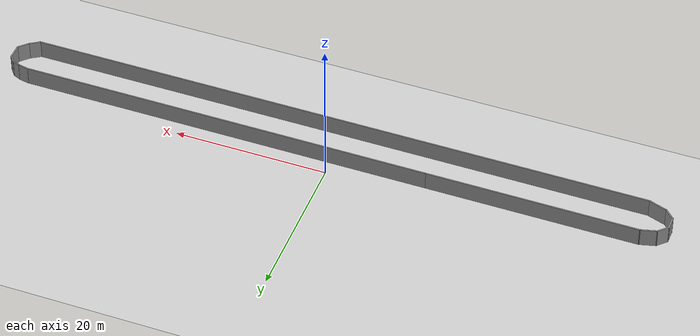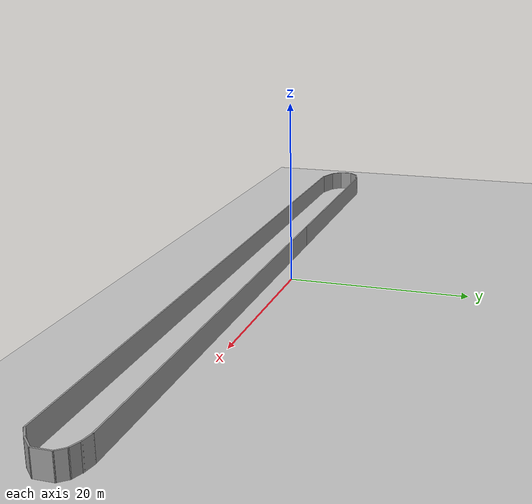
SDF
<sdf version="1.7">
 <world name="default">
  <light name="sun" type="directional">
   <pose>0 0 10 0 -0 0</pose>
   <diffuse>0.8 0.8 0.8 1</diffuse>
   <specular>0.2 0.2 0.2 1</specular>
   <attenuation>
    <range>1000</range>
    <constant>0.9</constant>
    <linear>0.01</linear>
    <quadratic>0.001</quadratic>
   </attenuation>
   <direction>-0.5 0.1 -0.9</direction>
   <spot><inner_angle>0</inner_angle><outer_angle>0</outer_angle><falloff>0</falloff></spot>
  </light>
  <model name="ground_plane">
   <static>1</static>
   <link name="link">
    <collision name="collision">
     <geometry><plane><normal>0 0 1</normal><size>100 100</size></plane></geometry>
     <surface><friction><ode><mu>100</mu><mu2>50</mu2></ode></friction></surface>
    </collision>
    <visual name="visual">
     <cast_shadows>0</cast_shadows>
     <geometry><plane><normal>0 0 1</normal><size>100 100</size></plane></geometry>
     <material>
      <script><uri>file://media/materials/scripts/gazebo.material</uri><name>Gazebo/Grey</name></script>
     </material>
    </visual>
   </link>
  </model>
  <gravity>0 0 -9.8</gravity>
  <magnetic_field>6e-06 2.3e-05 -4.2e-05</magnetic_field>
  <atmosphere type="adiabatic"/>
  <physics type="ode">
   <max_step_size>0.001</max_step_size>
   <real_time_factor>1</real_time_factor>
   <real_time_update_rate>1000</real_time_update_rate>
  </physics>
  <scene><ambient>0.4 0.4 0.4 1</ambient><background>0.7 0.7 0.7 1</background><shadows>1</shadows></scene>
  <audio><device>default</device></audio>
  <spherical_coordinates>
   <surface_model>EARTH_WGS84</surface_model>
   <latitude_deg>0</latitude_deg>
   <longitude_deg>0</longitude_deg>
   <elevation>0</elevation>
   <heading_deg>0</heading_deg>
  </spherical_coordinates>
  <model name="pista">
   <pose>0.576 -5.38544 0 0 -0 0</pose>
   <link name="Wall_1">
    <collision name="Wall_1_Collision">
     <geometry><box><size>27.75 0.15 2.5</size></box></geometry>
     <pose>0 0 1.25 0 -0 0</pose>
    </collision>
    <visual name="Wall_1_Visual">
     <pose>0 0 1.25 0 -0 0</pose>
     <geometry><box><size>27.75 0.15 2.5</size></box></geometry>
     <material>
      <script><uri>file://media/materials/scripts/gazebo.material</uri><name>Gazebo/Grey</name></script>
      <ambient>1 1 1 1</ambient>
     </material>
     <meta><layer>0</layer></meta>
    </visual>
    <pose>-26.822 3.46263 0 0 -0 3.14159</pose>
   </link>
   <link name="Wall_11">
    <collision name="Wall_11_Collision">
     <geometry><box><size>1.75 0.15 2.5</size></box></geometry>
     <pose>0 0 1.25 0 -0 0</pose>
    </collision>
    <visual name="Wall_11_Visual">
     <pose>0 0 1.25 0 -0 0</pose>
     <geometry><box><size>1.75 0.15 2.5</size></box></geometry>
     <material>
      <script><uri>file://media/materials/scripts/gazebo.material</uri><name>Gazebo/Grey</name></script>
      <ambient>1 1 1 1</ambient>
     </material>
     <meta><layer>0</layer></meta>
    </visual>
    <pose>43.2161 -0.377948 0 0 -0 0.785398</pose>
   </link>
   <link name="Wall_12">
    <collision name="Wall_12_Collision">
     <geometry><box><size>2 0.15 2.5</size></box></geometry>
     <pose>0 0 1.25 0 -0 0</pose>
    </collision>
    <visual name="Wall_12_Visual">
     <pose>0 0 1.25 0 -0 0</pose>
     <geometry><box><size>2 0.15 2.5</size></box></geometry>
     <material>
      <script><uri>file://media/materials/scripts/gazebo.material</uri><name>Gazebo/Grey</name></script>
      <ambient>1 1 1 1</ambient>
     </material>
     <meta><layer>0</layer></meta>
    </visual>
    <pose>43.7818 1.11274 0 0 -0 1.5708</pose>
   </link>
   <link name="Wall_13">
    <collision name="Wall_13_Collision">
     <geometry><box><size>1.16672 0.15 2.5</size></box></geometry>
     <pose>0 0 1.25 0 -0 0</pose>
    </collision>
    <visual name="Wall_13_Visual">
     <pose>0 0 1.25 0 -0 0</pose>
     <geometry><box><size>1.16672 0.15 2.5</size></box></geometry>
     <material>
      <script><uri>file://media/materials/scripts/gazebo.material</uri><name>Gazebo/Grey</name></script>
      <ambient>1 1 1 1</ambient>
     </material>
     <meta><layer>0</layer></meta>
    </visual>
    <pose>43.4544 2.42665 0 0 -0 2.27051</pose>
   </link>
   <link name="Wall_14">
    <collision name="Wall_14_Collision">
     <geometry><box><size>1.28174 0.15 2.5</size></box></geometry>
     <pose>0 0 1.25 0 -0 0</pose>
    </collision>
    <visual name="Wall_14_Visual">
     <pose>0 0 1.25 0 -0 0</pose>
     <geometry><box><size>1.28174 0.15 2.5</size></box></geometry>
     <material>
      <script><uri>file://media/materials/scripts/gazebo.material</uri><name>Gazebo/Grey</name></script>
      <ambient>1 1 1 1</ambient>
     </material>
     <meta><layer>0</layer></meta>
    </visual>
    <pose>42.6004 3.02261 0 0 -0 2.76699</pose>
   </link>
   <link name="Wall_16">
    <collision name="Wall_16_Collision">
     <geometry><box><size>53.9922 0.15 2.5</size></box></geometry>
     <pose>0 0 1.25 0 -0 0</pose>
    </collision>
    <visual name="Wall_16_Visual">
     <pose>0 0 1.25 0 -0 0</pose>
     <geometry><box><size>53.9922 0.15 2.5</size></box></geometry>
     <material>
      <script><uri>file://media/materials/scripts/gazebo.material</uri><name>Gazebo/Grey</name></script>
      <ambient>1 1 1 1</ambient>
     </material>
     <meta><layer>0</layer></meta>
    </visual>
    <pose>13.8991 3.46263 0 0 -0 0</pose>
   </link>
   <link name="Wall_17">
    <collision name="Wall_17_Collision">
     <geometry><box><size>1.42502 0.15 2.5</size></box></geometry>
     <pose>0 0 1.25 0 -0 0</pose>
    </collision>
    <visual name="Wall_17_Visual">
     <pose>0 0 1.25 0 -0 0</pose>
     <geometry><box><size>1.42502 0.15 2.5</size></box></geometry>
     <material>
      <script><uri>file://media/materials/scripts/gazebo.material</uri><name>Gazebo/Grey</name></script>
      <ambient>1 1 1 1</ambient>
     </material>
     <meta><layer>0</layer></meta>
    </visual>
    <pose>41.5085 3.34615 0 0 -0 -0.183746</pose>
   </link>
   <link name="Wall_2">
    <collision name="Wall_2_Collision">
     <geometry><box><size>2.25 0.15 2.5</size></box></geometry>
     <pose>0 0 1.25 0 -0 0</pose>
    </collision>
    <visual name="Wall_2_Visual">
     <pose>0 0 1.25 0 -0 0</pose>
     <geometry><box><size>2.25 0.15 2.5</size></box></geometry>
     <material>
      <script><uri>file://media/materials/scripts/gazebo.material</uri><name>Gazebo/Grey</name></script>
      <ambient>1 1 1 1</ambient>
     </material>
     <meta><layer>0</layer></meta>
    </visual>
    <pose>-41.6362 3.19087 0 0 -0 -2.87979</pose>
   </link>
   <link name="Wall_3">
    <collision name="Wall_3_Collision">
     <geometry><box><size>1.75 0.15 2.5</size></box></geometry>
     <pose>0 0 1.25 0 -0 0</pose>
    </collision>
    <visual name="Wall_3_Visual">
     <pose>0 0 1.25 0 -0 0</pose>
     <geometry><box><size>1.75 0.15 2.5</size></box></geometry>
     <material>
      <script><uri>file://media/materials/scripts/gazebo.material</uri><name>Gazebo/Grey</name></script>
      <ambient>1 1 1 1</ambient>
     </material>
     <meta><layer>0</layer></meta>
    </visual>
    <pose>-43.2161 2.35342 0 0 -0 -2.35619</pose>
   </link>
   <link name="Wall_4">
    <collision name="Wall_4_Collision">
     <geometry><box><size>1.75 0.15 2.5</size></box></geometry>
     <pose>0 0 1.25 0 -0 0</pose>
    </collision>
    <visual name="Wall_4_Visual">
     <pose>0 0 1.25 0 -0 0</pose>
     <geometry><box><size>1.75 0.15 2.5</size></box></geometry>
     <material>
      <script><uri>file://media/materials/scripts/gazebo.material</uri><name>Gazebo/Grey</name></script>
      <ambient>1 1 1 1</ambient>
     </material>
     <meta><layer>0</layer></meta>
    </visual>
    <pose>-43.7818 0.987738 0 0 -0 -1.5708</pose>
   </link>
   <link name="Wall_5">
    <collision name="Wall_5_Collision">
     <geometry><box><size>1.75 0.15 2.5</size></box></geometry>
     <pose>0 0 1.25 0 -0 0</pose>
    </collision>
    <visual name="Wall_5_Visual">
     <pose>0 0 1.25 0 -0 0</pose>
     <geometry><box><size>1.75 0.15 2.5</size></box></geometry>
     <material>
      <script><uri>file://media/materials/scripts/gazebo.material</uri><name>Gazebo/Grey</name></script>
      <ambient>1 1 1 1</ambient>
     </material>
     <meta><layer>0</layer></meta>
    </visual>
    <pose>-43.2161 -0.377948 0 0 -0 -0.785398</pose>
   </link>
   <link name="Wall_6">
    <collision name="Wall_6_Collision">
     <geometry><box><size>2.5381 0.15 2.5</size></box></geometry>
     <pose>0 0 1.25 0 -0 0</pose>
    </collision>
    <visual name="Wall_6_Visual">
     <pose>0 0 1.25 0 -0 0</pose>
     <geometry><box><size>2.5381 0.15 2.5</size></box></geometry>
     <material>
      <script><uri>file://media/materials/scripts/gazebo.material</uri><name>Gazebo/Grey</name></script>
      <ambient>1 1 1 1</ambient>
     </material>
     <meta><layer>0</layer></meta>
    </visual>
    <pose>-41.5162 -1.3168 0 0 -0 -0.317844</pose>
   </link>
   <link name="Wall_7">
    <collision name="Wall_7_Collision">
     <geometry><box><size>82 0.15 2.5</size></box></geometry>
     <pose>0 0 1.25 0 -0 0</pose>
    </collision>
    <visual name="Wall_7_Visual">
     <pose>0 0 1.25 0 -0 0</pose>
     <geometry><box><size>82 0.15 2.5</size></box></geometry>
     <material>
      <script><uri>file://media/materials/scripts/gazebo.material</uri><name>Gazebo/Grey</name></script>
      <ambient>1 1 1 1</ambient>
     </material>
     <meta><layer>0</layer></meta>
    </visual>
    <pose>0.543051 -1.74346 0 0 -0 0</pose>
   </link>
   <link name="Wall_8">
    <collision name="Wall_8_Collision">
     <geometry><box><size>1.54823 0.15 2.5</size></box></geometry>
     <pose>0 0 1.25 0 -0 0</pose>
    </collision>
    <visual name="Wall_8_Visual">
     <pose>0 0 1.25 0 -0 0</pose>
     <geometry><box><size>1.54823 0.15 2.5</size></box></geometry>
     <material>
      <script><uri>file://media/materials/scripts/gazebo.material</uri><name>Gazebo/Grey</name></script>
      <ambient>1 1 1 1</ambient>
     </material>
     <meta><layer>0</layer></meta>
    </visual>
    <pose>42.0592 -1.3168 0 0 -0 0.563049</pose>
   </link>
   <static>1</static>
  </model>
 </world>
</sdf>
